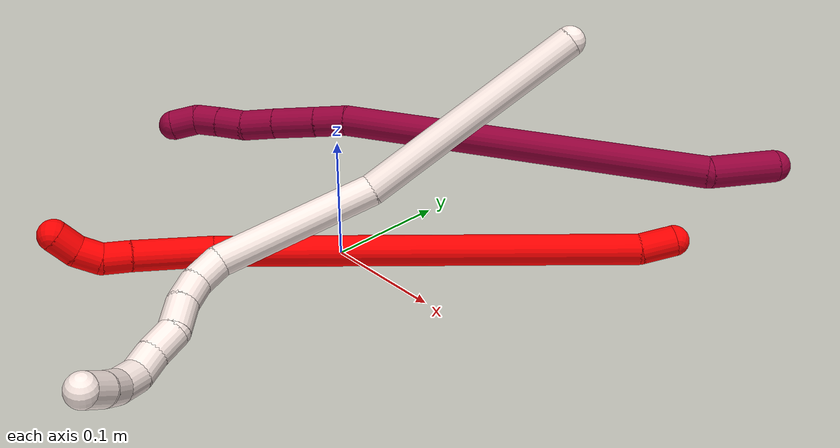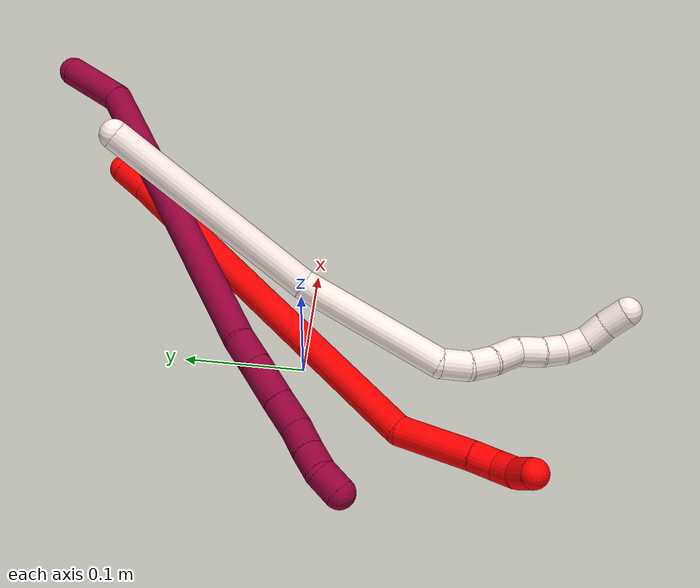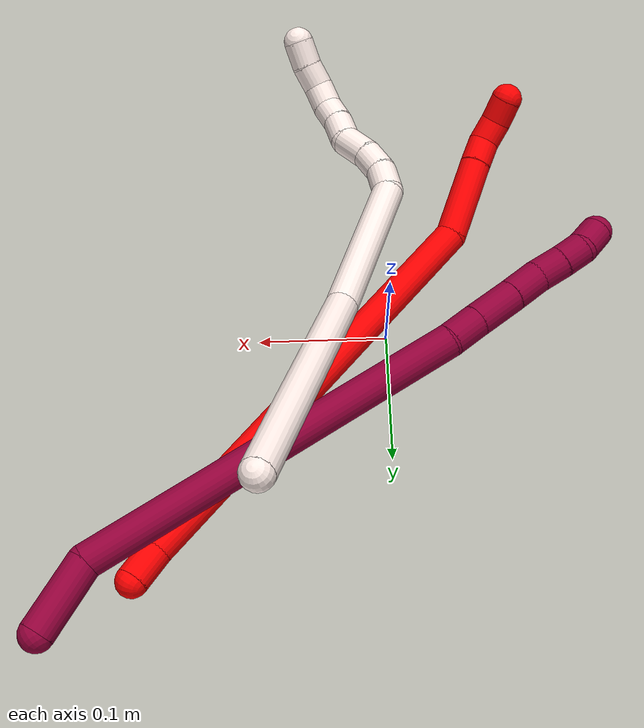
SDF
<sdf version="1.7">
 <world name="default">
  <model name="2">
   <static>0</static>
   <link name="2">
    <collision name="collision-cylinder-e_1_1_4">
     <pose>-0.010624 -0.009458 -0.002747 1.85344 -0.823252 -1.05325</pose>
     <geometry><cylinder><radius>0.0125</radius><length>0.028975</length></cylinder></geometry>
     <surface>
      <friction><ode><mu>1.16</mu><mu2>1.16</mu2><slip1>0</slip1><slip2>0</slip2></ode></friction>
      <contact><ode><kp>1e+06</kp><kd>1</kd><max_vel>0</max_vel><min_depth>0.001</min_depth></ode></contact>
     </surface>
    </collision>
    <visual name="visual-cylinder-e_1_1_4">
     <pose>-0.010624 -0.009458 -0.002747 1.85344 -0.823252 -1.05325</pose>
     <geometry><cylinder><radius>0.0125</radius><length>0.028975</length></cylinder></geometry>
     <material><ambient>1 0 0 1</ambient></material>
    </visual>
    <collision name="collision-cylinder-e_2_4_5">
     <pose>-0.133923 -0.147857 -0.003504 1.55537 -0.718117 -0.708025</pose>
     <geometry><cylinder><radius>0.0125</radius><length>0.342491</length></cylinder></geometry>
     <surface>
      <friction><ode><mu>1.16</mu><mu2>1.16</mu2><slip1>0</slip1><slip2>0</slip2></ode></friction>
      <contact><ode><kp>1e+06</kp><kd>1</kd><max_vel>0</max_vel><min_depth>0.001</min_depth></ode></contact>
     </surface>
    </collision>
    <visual name="visual-cylinder-e_2_4_5">
     <pose>-0.133923 -0.147857 -0.003504 1.55537 -0.718117 -0.708025</pose>
     <geometry><cylinder><radius>0.0125</radius><length>0.342491</length></cylinder></geometry>
     <material><ambient>1 0 0 1</ambient></material>
    </visual>
    <collision name="collision-cylinder-e_3_5_6">
     <pose>-0.259442 -0.305673 -0.009919 1.854 -0.403682 -0.532397</pose>
     <geometry><cylinder><radius>0.0125</radius><length>0.065405</length></cylinder></geometry>
     <surface>
      <friction><ode><mu>1.16</mu><mu2>1.16</mu2><slip1>0</slip1><slip2>0</slip2></ode></friction>
      <contact><ode><kp>1e+06</kp><kd>1</kd><max_vel>0</max_vel><min_depth>0.001</min_depth></ode></contact>
     </surface>
    </collision>
    <visual name="visual-cylinder-e_3_5_6">
     <pose>-0.259442 -0.305673 -0.009919 1.854 -0.403682 -0.532397</pose>
     <geometry><cylinder><radius>0.0125</radius><length>0.065405</length></cylinder></geometry>
     <material><ambient>1 0 0 1</ambient></material>
    </visual>
    <collision name="collision-cylinder-e_4_6_7">
     <pose>-0.277249 -0.343946 -0.021198 1.86776 -0.467464 -0.62274</pose>
     <geometry><cylinder><radius>0.0125</radius><length>0.022016</length></cylinder></geometry>
     <surface>
      <friction><ode><mu>1.16</mu><mu2>1.16</mu2><slip1>0</slip1><slip2>0</slip2></ode></friction>
      <contact><ode><kp>1e+06</kp><kd>1</kd><max_vel>0</max_vel><min_depth>0.001</min_depth></ode></contact>
     </surface>
    </collision>
    <visual name="visual-cylinder-e_4_6_7">
     <pose>-0.277249 -0.343946 -0.021198 1.86776 -0.467464 -0.62274</pose>
     <geometry><cylinder><radius>0.0125</radius><length>0.022016</length></cylinder></geometry>
     <material><ambient>1 0 0 1</ambient></material>
    </visual>
    <collision name="collision-cylinder-e_5_7_8">
     <pose>-0.2847 -0.36303 -0.023319 1.49301 -0.250927 -0.232306</pose>
     <geometry><cylinder><radius>0.0125</radius><length>0.02006</length></cylinder></geometry>
     <surface>
      <friction><ode><mu>1.16</mu><mu2>1.16</mu2><slip1>0</slip1><slip2>0</slip2></ode></friction>
      <contact><ode><kp>1e+06</kp><kd>1</kd><max_vel>0</max_vel><min_depth>0.001</min_depth></ode></contact>
     </surface>
    </collision>
    <visual name="visual-cylinder-e_5_7_8">
     <pose>-0.2847 -0.36303 -0.023319 1.49301 -0.250927 -0.232306</pose>
     <geometry><cylinder><radius>0.0125</radius><length>0.02006</length></cylinder></geometry>
     <material><ambient>1 0 0 1</ambient></material>
    </visual>
    <collision name="collision-cylinder-e_6_8_2">
     <pose>-0.286338 -0.382995 -0.02046 1.36887 0.081089 0.066183</pose>
     <geometry><cylinder><radius>0.0125</radius><length>0.021053</length></cylinder></geometry>
     <surface>
      <friction><ode><mu>1.16</mu><mu2>1.16</mu2><slip1>0</slip1><slip2>0</slip2></ode></friction>
      <contact><ode><kp>1e+06</kp><kd>1</kd><max_vel>0</max_vel><min_depth>0.001</min_depth></ode></contact>
     </surface>
    </collision>
    <visual name="visual-cylinder-e_6_8_2">
     <pose>-0.286338 -0.382995 -0.02046 1.36887 0.081089 0.066183</pose>
     <geometry><cylinder><radius>0.0125</radius><length>0.021053</length></cylinder></geometry>
     <material><ambient>1 0 0 1</ambient></material>
    </visual>
    <collision name="collision-sphere-2">
     <pose>-0.285485 -0.393274 -0.018355 0 -0 0</pose>
     <geometry><sphere><radius>0.0125</radius></sphere></geometry>
     <surface>
      <friction><ode><mu>1.16</mu><mu2>1.16</mu2><slip1>0</slip1><slip2>0</slip2></ode></friction>
      <contact><ode><kp>1e+06</kp><kd>1</kd><max_vel>0</max_vel><min_depth>0.001</min_depth></ode></contact>
     </surface>
    </collision>
    <visual name="visual-sphere-2">
     <pose>-0.285485 -0.393274 -0.018355 0 -0 0</pose>
     <geometry><sphere><radius>0.0125</radius></sphere></geometry>
     <material><ambient>1 0 0 1</ambient></material>
    </visual>
    <collision name="collision-sphere-4">
     <pose>-0.021249 -0.018917 -0.005494 0 -0 0</pose>
     <geometry><sphere><radius>0.0125</radius></sphere></geometry>
     <surface>
      <friction><ode><mu>1.16</mu><mu2>1.16</mu2><slip1>0</slip1><slip2>0</slip2></ode></friction>
      <contact><ode><kp>1e+06</kp><kd>1</kd><max_vel>0</max_vel><min_depth>0.001</min_depth></ode></contact>
     </surface>
    </collision>
    <visual name="visual-sphere-4">
     <pose>-0.021249 -0.018917 -0.005494 0 -0 0</pose>
     <geometry><sphere><radius>0.0125</radius></sphere></geometry>
     <material><ambient>1 0 0 1</ambient></material>
    </visual>
    <collision name="collision-sphere-1">
     <geometry><sphere><radius>0.0125</radius></sphere></geometry>
     <surface>
      <friction><ode><mu>1.16</mu><mu2>1.16</mu2><slip1>0</slip1><slip2>0</slip2></ode></friction>
      <contact><ode><kp>1e+06</kp><kd>1</kd><max_vel>0</max_vel><min_depth>0.001</min_depth></ode></contact>
     </surface>
    </collision>
    <visual name="visual-sphere-1">
     <geometry><sphere><radius>0.0125</radius></sphere></geometry>
     <material><ambient>1 0 0 1</ambient></material>
    </visual>
    <collision name="collision-sphere-8">
     <pose>-0.28719 -0.372716 -0.022564 0 -0 0</pose>
     <geometry><sphere><radius>0.0125</radius></sphere></geometry>
     <surface>
      <friction><ode><mu>1.16</mu><mu2>1.16</mu2><slip1>0</slip1><slip2>0</slip2></ode></friction>
      <contact><ode><kp>1e+06</kp><kd>1</kd><max_vel>0</max_vel><min_depth>0.001</min_depth></ode></contact>
     </surface>
    </collision>
    <visual name="visual-sphere-8">
     <pose>-0.28719 -0.372716 -0.022564 0 -0 0</pose>
     <geometry><sphere><radius>0.0125</radius></sphere></geometry>
     <material><ambient>1 0 0 1</ambient></material>
    </visual>
    <collision name="collision-sphere-5">
     <pose>-0.246597 -0.276797 -0.001515 0 -0 0</pose>
     <geometry><sphere><radius>0.0125</radius></sphere></geometry>
     <surface>
      <friction><ode><mu>1.16</mu><mu2>1.16</mu2><slip1>0</slip1><slip2>0</slip2></ode></friction>
      <contact><ode><kp>1e+06</kp><kd>1</kd><max_vel>0</max_vel><min_depth>0.001</min_depth></ode></contact>
     </surface>
    </collision>
    <visual name="visual-sphere-5">
     <pose>-0.246597 -0.276797 -0.001515 0 -0 0</pose>
     <geometry><sphere><radius>0.0125</radius></sphere></geometry>
     <material><ambient>1 0 0 1</ambient></material>
    </visual>
    <collision name="collision-sphere-6">
     <pose>-0.272288 -0.334549 -0.018323 0 -0 0</pose>
     <geometry><sphere><radius>0.0125</radius></sphere></geometry>
     <surface>
      <friction><ode><mu>1.16</mu><mu2>1.16</mu2><slip1>0</slip1><slip2>0</slip2></ode></friction>
      <contact><ode><kp>1e+06</kp><kd>1</kd><max_vel>0</max_vel><min_depth>0.001</min_depth></ode></contact>
     </surface>
    </collision>
    <visual name="visual-sphere-6">
     <pose>-0.272288 -0.334549 -0.018323 0 -0 0</pose>
     <geometry><sphere><radius>0.0125</radius></sphere></geometry>
     <material><ambient>1 0 0 1</ambient></material>
    </visual>
    <collision name="collision-sphere-7">
     <pose>-0.282209 -0.353343 -0.024074 0 -0 0</pose>
     <geometry><sphere><radius>0.0125</radius></sphere></geometry>
     <surface>
      <friction><ode><mu>1.16</mu><mu2>1.16</mu2><slip1>0</slip1><slip2>0</slip2></ode></friction>
      <contact><ode><kp>1e+06</kp><kd>1</kd><max_vel>0</max_vel><min_depth>0.001</min_depth></ode></contact>
     </surface>
    </collision>
    <visual name="visual-sphere-7">
     <pose>-0.282209 -0.353343 -0.024074 0 -0 0</pose>
     <geometry><sphere><radius>0.0125</radius></sphere></geometry>
     <material><ambient>1 0 0 1</ambient></material>
    </visual>
    <inertial>
     <pose>-0.161975 -0.187649 -0.006588 0 -0 0</pose>
     <mass>0.5</mass>
     <inertia>
      <ixx>0.000265</ixx>
      <ixy>0</ixy>
      <ixz>0</ixz>
      <iyy>-0.000214</iyy>
      <iyz>0</iyz>
      <izz>0.004784</izz>
     </inertia>
    </inertial>
   </link>
   <pose>0.191408 0.189734 0.016993 -1.0119 -0.775123 0.424746</pose>
  </model>
  <model name="8">
   <static>0</static>
   <link name="8">
    <collision name="collision-cylinder-e_1_1_4">
     <pose>-0.018706 -0.014582 0.013111 0.838463 -0.761815 -0.353217</pose>
     <geometry><cylinder><radius>0.0125</radius><length>0.054202</length></cylinder></geometry>
     <surface>
      <friction><ode><mu>1.16</mu><mu2>1.16</mu2><slip1>0</slip1><slip2>0</slip2></ode></friction>
      <contact><ode><kp>1e+06</kp><kd>1</kd><max_vel>0</max_vel><min_depth>0.001</min_depth></ode></contact>
     </surface>
    </collision>
    <visual name="visual-cylinder-e_1_1_4">
     <pose>-0.018706 -0.014582 0.013111 0.838463 -0.761815 -0.353217</pose>
     <geometry><cylinder><radius>0.0125</radius><length>0.054202</length></cylinder></geometry>
     <material><ambient>0.584314 0 0.227451 1</ambient></material>
    </visual>
    <collision name="collision-cylinder-e_2_4_5">
     <pose>-0.153394 -0.118827 0.030024 1.52842 -0.912255 -0.879171</pose>
     <geometry><cylinder><radius>0.0125</radius><length>0.293295</length></cylinder></geometry>
     <surface>
      <friction><ode><mu>1.16</mu><mu2>1.16</mu2><slip1>0</slip1><slip2>0</slip2></ode></friction>
      <contact><ode><kp>1e+06</kp><kd>1</kd><max_vel>0</max_vel><min_depth>0.001</min_depth></ode></contact>
     </surface>
    </collision>
    <visual name="visual-cylinder-e_2_4_5">
     <pose>-0.153394 -0.118827 0.030024 1.52842 -0.912255 -0.879171</pose>
     <geometry><cylinder><radius>0.0125</radius><length>0.293295</length></cylinder></geometry>
     <material><ambient>0.584314 0 0.227451 1</ambient></material>
    </visual>
    <collision name="collision-cylinder-e_3_5_6">
     <pose>-0.278341 -0.217581 0.035871 1.3495 -0.76611 -0.623706</pose>
     <geometry><cylinder><radius>0.0125</radius><length>0.025863</length></cylinder></geometry>
     <surface>
      <friction><ode><mu>1.16</mu><mu2>1.16</mu2><slip1>0</slip1><slip2>0</slip2></ode></friction>
      <contact><ode><kp>1e+06</kp><kd>1</kd><max_vel>0</max_vel><min_depth>0.001</min_depth></ode></contact>
     </surface>
    </collision>
    <visual name="visual-cylinder-e_3_5_6">
     <pose>-0.278341 -0.217581 0.035871 1.3495 -0.76611 -0.623706</pose>
     <geometry><cylinder><radius>0.0125</radius><length>0.025863</length></cylinder></geometry>
     <material><ambient>0.584314 0 0.227451 1</ambient></material>
    </visual>
    <collision name="collision-cylinder-e_4_6_7">
     <pose>-0.299639 -0.239271 0.040442 1.37293 -0.764841 -0.636747</pose>
     <geometry><cylinder><radius>0.0125</radius><length>0.035618</length></cylinder></geometry>
     <surface>
      <friction><ode><mu>1.16</mu><mu2>1.16</mu2><slip1>0</slip1><slip2>0</slip2></ode></friction>
      <contact><ode><kp>1e+06</kp><kd>1</kd><max_vel>0</max_vel><min_depth>0.001</min_depth></ode></contact>
     </surface>
    </collision>
    <visual name="visual-cylinder-e_4_6_7">
     <pose>-0.299639 -0.239271 0.040442 1.37293 -0.764841 -0.636747</pose>
     <geometry><cylinder><radius>0.0125</radius><length>0.035618</length></cylinder></geometry>
     <material><ambient>0.584314 0 0.227451 1</ambient></material>
    </visual>
    <collision name="collision-cylinder-e_5_7_8">
     <pose>-0.321256 -0.261599 0.045255 1.33997 -0.748659 -0.603455</pose>
     <geometry><cylinder><radius>0.0125</radius><length>0.027285</length></cylinder></geometry>
     <surface>
      <friction><ode><mu>1.16</mu><mu2>1.16</mu2><slip1>0</slip1><slip2>0</slip2></ode></friction>
      <contact><ode><kp>1e+06</kp><kd>1</kd><max_vel>0</max_vel><min_depth>0.001</min_depth></ode></contact>
     </surface>
    </collision>
    <visual name="visual-cylinder-e_5_7_8">
     <pose>-0.321256 -0.261599 0.045255 1.33997 -0.748659 -0.603455</pose>
     <geometry><cylinder><radius>0.0125</radius><length>0.027285</length></cylinder></geometry>
     <material><ambient>0.584314 0 0.227451 1</ambient></material>
    </visual>
    <collision name="collision-cylinder-e_6_8_9">
     <pose>-0.3394 -0.278214 0.047852 1.52566 -0.909483 -0.874345</pose>
     <geometry><cylinder><radius>0.0125</radius><length>0.022447</length></cylinder></geometry>
     <surface>
      <friction><ode><mu>1.16</mu><mu2>1.16</mu2><slip1>0</slip1><slip2>0</slip2></ode></friction>
      <contact><ode><kp>1e+06</kp><kd>1</kd><max_vel>0</max_vel><min_depth>0.001</min_depth></ode></contact>
     </surface>
    </collision>
    <visual name="visual-cylinder-e_6_8_9">
     <pose>-0.3394 -0.278214 0.047852 1.52566 -0.909483 -0.874345</pose>
     <geometry><cylinder><radius>0.0125</radius><length>0.022447</length></cylinder></geometry>
     <material><ambient>0.584314 0 0.227451 1</ambient></material>
    </visual>
    <collision name="collision-cylinder-e_7_9_10">
     <pose>-0.356184 -0.291309 0.048966 1.44229 -0.902324 -0.805289</pose>
     <geometry><cylinder><radius>0.0125</radius><length>0.020201</length></cylinder></geometry>
     <surface>
      <friction><ode><mu>1.16</mu><mu2>1.16</mu2><slip1>0</slip1><slip2>0</slip2></ode></friction>
      <contact><ode><kp>1e+06</kp><kd>1</kd><max_vel>0</max_vel><min_depth>0.001</min_depth></ode></contact>
     </surface>
    </collision>
    <visual name="visual-cylinder-e_7_9_10">
     <pose>-0.356184 -0.291309 0.048966 1.44229 -0.902324 -0.805289</pose>
     <geometry><cylinder><radius>0.0125</radius><length>0.020201</length></cylinder></geometry>
     <material><ambient>0.584314 0 0.227451 1</ambient></material>
    </visual>
    <collision name="collision-cylinder-e_8_10_2">
     <pose>-0.370161 -0.305306 0.053495 1.12443 -0.611276 -0.392468</pose>
     <geometry><cylinder><radius>0.0125</radius><length>0.021088</length></cylinder></geometry>
     <surface>
      <friction><ode><mu>1.16</mu><mu2>1.16</mu2><slip1>0</slip1><slip2>0</slip2></ode></friction>
      <contact><ode><kp>1e+06</kp><kd>1</kd><max_vel>0</max_vel><min_depth>0.001</min_depth></ode></contact>
     </surface>
    </collision>
    <visual name="visual-cylinder-e_8_10_2">
     <pose>-0.370161 -0.305306 0.053495 1.12443 -0.611276 -0.392468</pose>
     <geometry><cylinder><radius>0.0125</radius><length>0.021088</length></cylinder></geometry>
     <material><ambient>0.584314 0 0.227451 1</ambient></material>
    </visual>
    <collision name="collision-sphere-2">
     <pose>-0.376213 -0.313094 0.057223 0 -0 0</pose>
     <geometry><sphere><radius>0.0125</radius></sphere></geometry>
     <surface>
      <friction><ode><mu>1.16</mu><mu2>1.16</mu2><slip1>0</slip1><slip2>0</slip2></ode></friction>
      <contact><ode><kp>1e+06</kp><kd>1</kd><max_vel>0</max_vel><min_depth>0.001</min_depth></ode></contact>
     </surface>
    </collision>
    <visual name="visual-sphere-2">
     <pose>-0.376213 -0.313094 0.057223 0 -0 0</pose>
     <geometry><sphere><radius>0.0125</radius></sphere></geometry>
     <material><ambient>0.584314 0 0.227451 1</ambient></material>
    </visual>
    <collision name="collision-sphere-10">
     <pose>-0.36411 -0.297517 0.049768 0 -0 0</pose>
     <geometry><sphere><radius>0.0125</radius></sphere></geometry>
     <surface>
      <friction><ode><mu>1.16</mu><mu2>1.16</mu2><slip1>0</slip1><slip2>0</slip2></ode></friction>
      <contact><ode><kp>1e+06</kp><kd>1</kd><max_vel>0</max_vel><min_depth>0.001</min_depth></ode></contact>
     </surface>
    </collision>
    <visual name="visual-sphere-10">
     <pose>-0.36411 -0.297517 0.049768 0 -0 0</pose>
     <geometry><sphere><radius>0.0125</radius></sphere></geometry>
     <material><ambient>0.584314 0 0.227451 1</ambient></material>
    </visual>
    <collision name="collision-sphere-9">
     <pose>-0.348257 -0.2851 0.048163 0 -0 0</pose>
     <geometry><sphere><radius>0.0125</radius></sphere></geometry>
     <surface>
      <friction><ode><mu>1.16</mu><mu2>1.16</mu2><slip1>0</slip1><slip2>0</slip2></ode></friction>
      <contact><ode><kp>1e+06</kp><kd>1</kd><max_vel>0</max_vel><min_depth>0.001</min_depth></ode></contact>
     </surface>
    </collision>
    <visual name="visual-sphere-9">
     <pose>-0.348257 -0.2851 0.048163 0 -0 0</pose>
     <geometry><sphere><radius>0.0125</radius></sphere></geometry>
     <material><ambient>0.584314 0 0.227451 1</ambient></material>
    </visual>
    <collision name="collision-sphere-4">
     <pose>-0.037412 -0.029164 0.026223 0 -0 0</pose>
     <geometry><sphere><radius>0.0125</radius></sphere></geometry>
     <surface>
      <friction><ode><mu>1.16</mu><mu2>1.16</mu2><slip1>0</slip1><slip2>0</slip2></ode></friction>
      <contact><ode><kp>1e+06</kp><kd>1</kd><max_vel>0</max_vel><min_depth>0.001</min_depth></ode></contact>
     </surface>
    </collision>
    <visual name="visual-sphere-4">
     <pose>-0.037412 -0.029164 0.026223 0 -0 0</pose>
     <geometry><sphere><radius>0.0125</radius></sphere></geometry>
     <material><ambient>0.584314 0 0.227451 1</ambient></material>
    </visual>
    <collision name="collision-sphere-1">
     <geometry><sphere><radius>0.0125</radius></sphere></geometry>
     <surface>
      <friction><ode><mu>1.16</mu><mu2>1.16</mu2><slip1>0</slip1><slip2>0</slip2></ode></friction>
      <contact><ode><kp>1e+06</kp><kd>1</kd><max_vel>0</max_vel><min_depth>0.001</min_depth></ode></contact>
     </surface>
    </collision>
    <visual name="visual-sphere-1">
     <geometry><sphere><radius>0.0125</radius></sphere></geometry>
     <material><ambient>0.584314 0 0.227451 1</ambient></material>
    </visual>
    <collision name="collision-sphere-8">
     <pose>-0.330542 -0.271328 0.047541 0 -0 0</pose>
     <geometry><sphere><radius>0.0125</radius></sphere></geometry>
     <surface>
      <friction><ode><mu>1.16</mu><mu2>1.16</mu2><slip1>0</slip1><slip2>0</slip2></ode></friction>
      <contact><ode><kp>1e+06</kp><kd>1</kd><max_vel>0</max_vel><min_depth>0.001</min_depth></ode></contact>
     </surface>
    </collision>
    <visual name="visual-sphere-8">
     <pose>-0.330542 -0.271328 0.047541 0 -0 0</pose>
     <geometry><sphere><radius>0.0125</radius></sphere></geometry>
     <material><ambient>0.584314 0 0.227451 1</ambient></material>
    </visual>
    <collision name="collision-sphere-5">
     <pose>-0.269375 -0.208489 0.033826 0 -0 0</pose>
     <geometry><sphere><radius>0.0125</radius></sphere></geometry>
     <surface>
      <friction><ode><mu>1.16</mu><mu2>1.16</mu2><slip1>0</slip1><slip2>0</slip2></ode></friction>
      <contact><ode><kp>1e+06</kp><kd>1</kd><max_vel>0</max_vel><min_depth>0.001</min_depth></ode></contact>
     </surface>
    </collision>
    <visual name="visual-sphere-5">
     <pose>-0.269375 -0.208489 0.033826 0 -0 0</pose>
     <geometry><sphere><radius>0.0125</radius></sphere></geometry>
     <material><ambient>0.584314 0 0.227451 1</ambient></material>
    </visual>
    <collision name="collision-sphere-6">
     <pose>-0.287307 -0.226672 0.037916 0 -0 0</pose>
     <geometry><sphere><radius>0.0125</radius></sphere></geometry>
     <surface>
      <friction><ode><mu>1.16</mu><mu2>1.16</mu2><slip1>0</slip1><slip2>0</slip2></ode></friction>
      <contact><ode><kp>1e+06</kp><kd>1</kd><max_vel>0</max_vel><min_depth>0.001</min_depth></ode></contact>
     </surface>
    </collision>
    <visual name="visual-sphere-6">
     <pose>-0.287307 -0.226672 0.037916 0 -0 0</pose>
     <geometry><sphere><radius>0.0125</radius></sphere></geometry>
     <material><ambient>0.584314 0 0.227451 1</ambient></material>
    </visual>
    <collision name="collision-sphere-7">
     <pose>-0.31197 -0.251869 0.042968 0 -0 0</pose>
     <geometry><sphere><radius>0.0125</radius></sphere></geometry>
     <surface>
      <friction><ode><mu>1.16</mu><mu2>1.16</mu2><slip1>0</slip1><slip2>0</slip2></ode></friction>
      <contact><ode><kp>1e+06</kp><kd>1</kd><max_vel>0</max_vel><min_depth>0.001</min_depth></ode></contact>
     </surface>
    </collision>
    <visual name="visual-sphere-7">
     <pose>-0.31197 -0.251869 0.042968 0 -0 0</pose>
     <geometry><sphere><radius>0.0125</radius></sphere></geometry>
     <material><ambient>0.584314 0 0.227451 1</ambient></material>
    </visual>
    <inertial>
     <pose>-0.19052 -0.150995 0.032622 0 -0 0</pose>
     <mass>0.5</mass>
     <inertia>
      <ixx>-0.000192</ixx>
      <ixy>0</ixy>
      <ixz>0</ixz>
      <iyy>0.000334</iyy>
      <iyz>0</iyz>
      <izz>0.003009</izz>
     </inertia>
    </inertial>
   </link>
   <pose>0.240792 0.238372 0.086478 1.59371 0.674669 0.521422</pose>
  </model>
  <model name="11">
   <static>0</static>
   <link name="11">
    <collision name="collision-cylinder-e_1_1_4">
     <pose>0.010299 -0.082052 -0.050257 2.12036 0.106629 0.189958</pose>
     <geometry><cylinder><radius>0.0125</radius><length>0.19354</length></cylinder></geometry>
     <surface>
      <friction><ode><mu>1.16</mu><mu2>1.16</mu2><slip1>0</slip1><slip2>0</slip2></ode></friction>
      <contact><ode><kp>1e+06</kp><kd>1</kd><max_vel>0</max_vel><min_depth>0.001</min_depth></ode></contact>
     </surface>
    </collision>
    <visual name="visual-cylinder-e_1_1_4">
     <pose>0.010299 -0.082052 -0.050257 2.12036 0.106629 0.189958</pose>
     <geometry><cylinder><radius>0.0125</radius><length>0.19354</length></cylinder></geometry>
     <material><ambient>1 0.933333 0.909804 1</ambient></material>
    </visual>
    <collision name="collision-cylinder-e_2_4_5">
     <pose>0.024865 -0.225137 -0.11932 1.8697 0.066711 0.090335</pose>
     <geometry><cylinder><radius>0.0125</radius><length>0.128013</length></cylinder></geometry>
     <surface>
      <friction><ode><mu>1.16</mu><mu2>1.16</mu2><slip1>0</slip1><slip2>0</slip2></ode></friction>
      <contact><ode><kp>1e+06</kp><kd>1</kd><max_vel>0</max_vel><min_depth>0.001</min_depth></ode></contact>
     </surface>
    </collision>
    <visual name="visual-cylinder-e_2_4_5">
     <pose>0.024865 -0.225137 -0.11932 1.8697 0.066711 0.090335</pose>
     <geometry><cylinder><radius>0.0125</radius><length>0.128013</length></cylinder></geometry>
     <material><ambient>1 0.933333 0.909804 1</ambient></material>
    </visual>
    <collision name="collision-cylinder-e_3_5_6">
     <pose>0.035733 -0.296411 -0.140237 1.77404 0.563186 0.6822</pose>
     <geometry><cylinder><radius>0.0125</radius><length>0.024732</length></cylinder></geometry>
     <surface>
      <friction><ode><mu>1.16</mu><mu2>1.16</mu2><slip1>0</slip1><slip2>0</slip2></ode></friction>
      <contact><ode><kp>1e+06</kp><kd>1</kd><max_vel>0</max_vel><min_depth>0.001</min_depth></ode></contact>
     </surface>
    </collision>
    <visual name="visual-cylinder-e_3_5_6">
     <pose>0.035733 -0.296411 -0.140237 1.77404 0.563186 0.6822</pose>
     <geometry><cylinder><radius>0.0125</radius><length>0.024732</length></cylinder></geometry>
     <material><ambient>1 0.933333 0.909804 1</ambient></material>
    </visual>
    <collision name="collision-cylinder-e_4_6_7">
     <pose>0.050932 -0.313658 -0.143154 1.68544 0.883737 0.975756</pose>
     <geometry><cylinder><radius>0.0125</radius><length>0.022238</length></cylinder></geometry>
     <surface>
      <friction><ode><mu>1.16</mu><mu2>1.16</mu2><slip1>0</slip1><slip2>0</slip2></ode></friction>
      <contact><ode><kp>1e+06</kp><kd>1</kd><max_vel>0</max_vel><min_depth>0.001</min_depth></ode></contact>
     </surface>
    </collision>
    <visual name="visual-cylinder-e_4_6_7">
     <pose>0.050932 -0.313658 -0.143154 1.68544 0.883737 0.975756</pose>
     <geometry><cylinder><radius>0.0125</radius><length>0.022238</length></cylinder></geometry>
     <material><ambient>1 0.933333 0.909804 1</ambient></material>
    </visual>
    <collision name="collision-cylinder-e_5_7_8">
     <pose>0.071176 -0.326455 -0.145143 1.77203 1.10119 1.28931</pose>
     <geometry><cylinder><radius>0.0125</radius><length>0.026124</length></cylinder></geometry>
     <surface>
      <friction><ode><mu>1.16</mu><mu2>1.16</mu2><slip1>0</slip1><slip2>0</slip2></ode></friction>
      <contact><ode><kp>1e+06</kp><kd>1</kd><max_vel>0</max_vel><min_depth>0.001</min_depth></ode></contact>
     </surface>
    </collision>
    <visual name="visual-cylinder-e_5_7_8">
     <pose>0.071176 -0.326455 -0.145143 1.77203 1.10119 1.28931</pose>
     <geometry><cylinder><radius>0.0125</radius><length>0.026124</length></cylinder></geometry>
     <material><ambient>1 0.933333 0.909804 1</ambient></material>
    </visual>
    <collision name="collision-cylinder-e_6_8_9">
     <pose>0.089624 -0.341331 -0.147956 1.74857 0.635009 0.748789</pose>
     <geometry><cylinder><radius>0.0125</radius><length>0.022929</length></cylinder></geometry>
     <surface>
      <friction><ode><mu>1.16</mu><mu2>1.16</mu2><slip1>0</slip1><slip2>0</slip2></ode></friction>
      <contact><ode><kp>1e+06</kp><kd>1</kd><max_vel>0</max_vel><min_depth>0.001</min_depth></ode></contact>
     </surface>
    </collision>
    <visual name="visual-cylinder-e_6_8_9">
     <pose>0.089624 -0.341331 -0.147956 1.74857 0.635009 0.748789</pose>
     <geometry><cylinder><radius>0.0125</radius><length>0.022929</length></cylinder></geometry>
     <material><ambient>1 0.933333 0.909804 1</ambient></material>
    </visual>
    <collision name="collision-cylinder-e_7_9_10">
     <pose>0.103655 -0.357413 -0.150524 1.70377 0.797367 0.897217</pose>
     <geometry><cylinder><radius>0.0125</radius><length>0.02021</length></cylinder></geometry>
     <surface>
      <friction><ode><mu>1.16</mu><mu2>1.16</mu2><slip1>0</slip1><slip2>0</slip2></ode></friction>
      <contact><ode><kp>1e+06</kp><kd>1</kd><max_vel>0</max_vel><min_depth>0.001</min_depth></ode></contact>
     </surface>
    </collision>
    <visual name="visual-cylinder-e_7_9_10">
     <pose>0.103655 -0.357413 -0.150524 1.70377 0.797367 0.897217</pose>
     <geometry><cylinder><radius>0.0125</radius><length>0.02021</length></cylinder></geometry>
     <material><ambient>1 0.933333 0.909804 1</ambient></material>
    </visual>
    <collision name="collision-cylinder-e_8_10_11">
     <pose>0.117065 -0.371881 -0.148081 1.14602 0.645756 0.425241</pose>
     <geometry><cylinder><radius>0.0125</radius><length>0.020537</length></cylinder></geometry>
     <surface>
      <friction><ode><mu>1.16</mu><mu2>1.16</mu2><slip1>0</slip1><slip2>0</slip2></ode></friction>
      <contact><ode><kp>1e+06</kp><kd>1</kd><max_vel>0</max_vel><min_depth>0.001</min_depth></ode></contact>
     </surface>
    </collision>
    <visual name="visual-cylinder-e_8_10_11">
     <pose>0.117065 -0.371881 -0.148081 1.14602 0.645756 0.425241</pose>
     <geometry><cylinder><radius>0.0125</radius><length>0.020537</length></cylinder></geometry>
     <material><ambient>1 0.933333 0.909804 1</ambient></material>
    </visual>
    <collision name="collision-cylinder-e_9_11_12">
     <pose>0.128812 -0.384634 -0.138075 0.672888 0.581392 0.208506</pose>
     <geometry><cylinder><radius>0.0125</radius><length>0.020276</length></cylinder></geometry>
     <surface>
      <friction><ode><mu>1.16</mu><mu2>1.16</mu2><slip1>0</slip1><slip2>0</slip2></ode></friction>
      <contact><ode><kp>1e+06</kp><kd>1</kd><max_vel>0</max_vel><min_depth>0.001</min_depth></ode></contact>
     </surface>
    </collision>
    <visual name="visual-cylinder-e_9_11_12">
     <pose>0.128812 -0.384634 -0.138075 0.672888 0.581392 0.208506</pose>
     <geometry><cylinder><radius>0.0125</radius><length>0.020276</length></cylinder></geometry>
     <material><ambient>1 0.933333 0.909804 1</ambient></material>
    </visual>
    <collision name="collision-cylinder-e_10_12_2">
     <pose>0.138952 -0.396561 -0.124419 0.757341 0.441516 0.178105</pose>
     <geometry><cylinder><radius>0.0125</radius><length>0.021401</length></cylinder></geometry>
     <surface>
      <friction><ode><mu>1.16</mu><mu2>1.16</mu2><slip1>0</slip1><slip2>0</slip2></ode></friction>
      <contact><ode><kp>1e+06</kp><kd>1</kd><max_vel>0</max_vel><min_depth>0.001</min_depth></ode></contact>
     </surface>
    </collision>
    <visual name="visual-cylinder-e_10_12_2">
     <pose>0.138952 -0.396561 -0.124419 0.757341 0.441516 0.178105</pose>
     <geometry><cylinder><radius>0.0125</radius><length>0.021401</length></cylinder></geometry>
     <material><ambient>1 0.933333 0.909804 1</ambient></material>
    </visual>
    <collision name="collision-sphere-2">
     <pose>0.143525 -0.403207 -0.117389 0 -0 0</pose>
     <geometry><sphere><radius>0.0125</radius></sphere></geometry>
     <surface>
      <friction><ode><mu>1.16</mu><mu2>1.16</mu2><slip1>0</slip1><slip2>0</slip2></ode></friction>
      <contact><ode><kp>1e+06</kp><kd>1</kd><max_vel>0</max_vel><min_depth>0.001</min_depth></ode></contact>
     </surface>
    </collision>
    <visual name="visual-sphere-2">
     <pose>0.143525 -0.403207 -0.117389 0 -0 0</pose>
     <geometry><sphere><radius>0.0125</radius></sphere></geometry>
     <material><ambient>1 0.933333 0.909804 1</ambient></material>
    </visual>
    <collision name="collision-sphere-12">
     <pose>0.13438 -0.389914 -0.13145 0 -0 0</pose>
     <geometry><sphere><radius>0.0125</radius></sphere></geometry>
     <surface>
      <friction><ode><mu>1.16</mu><mu2>1.16</mu2><slip1>0</slip1><slip2>0</slip2></ode></friction>
      <contact><ode><kp>1e+06</kp><kd>1</kd><max_vel>0</max_vel><min_depth>0.001</min_depth></ode></contact>
     </surface>
    </collision>
    <visual name="visual-sphere-12">
     <pose>0.13438 -0.389914 -0.13145 0 -0 0</pose>
     <geometry><sphere><radius>0.0125</radius></sphere></geometry>
     <material><ambient>1 0.933333 0.909804 1</ambient></material>
    </visual>
    <collision name="collision-sphere-11">
     <pose>0.123244 -0.379353 -0.144701 0 -0 0</pose>
     <geometry><sphere><radius>0.0125</radius></sphere></geometry>
     <surface>
      <friction><ode><mu>1.16</mu><mu2>1.16</mu2><slip1>0</slip1><slip2>0</slip2></ode></friction>
      <contact><ode><kp>1e+06</kp><kd>1</kd><max_vel>0</max_vel><min_depth>0.001</min_depth></ode></contact>
     </surface>
    </collision>
    <visual name="visual-sphere-11">
     <pose>0.123244 -0.379353 -0.144701 0 -0 0</pose>
     <geometry><sphere><radius>0.0125</radius></sphere></geometry>
     <material><ambient>1 0.933333 0.909804 1</ambient></material>
    </visual>
    <collision name="collision-sphere-10">
     <pose>0.110885 -0.364409 -0.15146 0 -0 0</pose>
     <geometry><sphere><radius>0.0125</radius></sphere></geometry>
     <surface>
      <friction><ode><mu>1.16</mu><mu2>1.16</mu2><slip1>0</slip1><slip2>0</slip2></ode></friction>
      <contact><ode><kp>1e+06</kp><kd>1</kd><max_vel>0</max_vel><min_depth>0.001</min_depth></ode></contact>
     </surface>
    </collision>
    <visual name="visual-sphere-10">
     <pose>0.110885 -0.364409 -0.15146 0 -0 0</pose>
     <geometry><sphere><radius>0.0125</radius></sphere></geometry>
     <material><ambient>1 0.933333 0.909804 1</ambient></material>
    </visual>
    <collision name="collision-sphere-9">
     <pose>0.096425 -0.350416 -0.149588 0 -0 0</pose>
     <geometry><sphere><radius>0.0125</radius></sphere></geometry>
     <surface>
      <friction><ode><mu>1.16</mu><mu2>1.16</mu2><slip1>0</slip1><slip2>0</slip2></ode></friction>
      <contact><ode><kp>1e+06</kp><kd>1</kd><max_vel>0</max_vel><min_depth>0.001</min_depth></ode></contact>
     </surface>
    </collision>
    <visual name="visual-sphere-9">
     <pose>0.096425 -0.350416 -0.149588 0 -0 0</pose>
     <geometry><sphere><radius>0.0125</radius></sphere></geometry>
     <material><ambient>1 0.933333 0.909804 1</ambient></material>
    </visual>
    <collision name="collision-sphere-4">
     <pose>0.020598 -0.164105 -0.100514 0 -0 0</pose>
     <geometry><sphere><radius>0.0125</radius></sphere></geometry>
     <surface>
      <friction><ode><mu>1.16</mu><mu2>1.16</mu2><slip1>0</slip1><slip2>0</slip2></ode></friction>
      <contact><ode><kp>1e+06</kp><kd>1</kd><max_vel>0</max_vel><min_depth>0.001</min_depth></ode></contact>
     </surface>
    </collision>
    <visual name="visual-sphere-4">
     <pose>0.020598 -0.164105 -0.100514 0 -0 0</pose>
     <geometry><sphere><radius>0.0125</radius></sphere></geometry>
     <material><ambient>1 0.933333 0.909804 1</ambient></material>
    </visual>
    <collision name="collision-sphere-1">
     <geometry><sphere><radius>0.0125</radius></sphere></geometry>
     <surface>
      <friction><ode><mu>1.16</mu><mu2>1.16</mu2><slip1>0</slip1><slip2>0</slip2></ode></friction>
      <contact><ode><kp>1e+06</kp><kd>1</kd><max_vel>0</max_vel><min_depth>0.001</min_depth></ode></contact>
     </surface>
    </collision>
    <visual name="visual-sphere-1">
     <geometry><sphere><radius>0.0125</radius></sphere></geometry>
     <material><ambient>1 0.933333 0.909804 1</ambient></material>
    </visual>
    <collision name="collision-sphere-8">
     <pose>0.082823 -0.332247 -0.146324 0 -0 0</pose>
     <geometry><sphere><radius>0.0125</radius></sphere></geometry>
     <surface>
      <friction><ode><mu>1.16</mu><mu2>1.16</mu2><slip1>0</slip1><slip2>0</slip2></ode></friction>
      <contact><ode><kp>1e+06</kp><kd>1</kd><max_vel>0</max_vel><min_depth>0.001</min_depth></ode></contact>
     </surface>
    </collision>
    <visual name="visual-sphere-8">
     <pose>0.082823 -0.332247 -0.146324 0 -0 0</pose>
     <geometry><sphere><radius>0.0125</radius></sphere></geometry>
     <material><ambient>1 0.933333 0.909804 1</ambient></material>
    </visual>
    <collision name="collision-sphere-5">
     <pose>0.029132 -0.28617 -0.138127 0 -0 0</pose>
     <geometry><sphere><radius>0.0125</radius></sphere></geometry>
     <surface>
      <friction><ode><mu>1.16</mu><mu2>1.16</mu2><slip1>0</slip1><slip2>0</slip2></ode></friction>
      <contact><ode><kp>1e+06</kp><kd>1</kd><max_vel>0</max_vel><min_depth>0.001</min_depth></ode></contact>
     </surface>
    </collision>
    <visual name="visual-sphere-5">
     <pose>0.029132 -0.28617 -0.138127 0 -0 0</pose>
     <geometry><sphere><radius>0.0125</radius></sphere></geometry>
     <material><ambient>1 0.933333 0.909804 1</ambient></material>
    </visual>
    <collision name="collision-sphere-6">
     <pose>0.042335 -0.306652 -0.142348 0 -0 0</pose>
     <geometry><sphere><radius>0.0125</radius></sphere></geometry>
     <surface>
      <friction><ode><mu>1.16</mu><mu2>1.16</mu2><slip1>0</slip1><slip2>0</slip2></ode></friction>
      <contact><ode><kp>1e+06</kp><kd>1</kd><max_vel>0</max_vel><min_depth>0.001</min_depth></ode></contact>
     </surface>
    </collision>
    <visual name="visual-sphere-6">
     <pose>0.042335 -0.306652 -0.142348 0 -0 0</pose>
     <geometry><sphere><radius>0.0125</radius></sphere></geometry>
     <material><ambient>1 0.933333 0.909804 1</ambient></material>
    </visual>
    <collision name="collision-sphere-7">
     <pose>0.059528 -0.320664 -0.143961 0 -0 0</pose>
     <geometry><sphere><radius>0.0125</radius></sphere></geometry>
     <surface>
      <friction><ode><mu>1.16</mu><mu2>1.16</mu2><slip1>0</slip1><slip2>0</slip2></ode></friction>
      <contact><ode><kp>1e+06</kp><kd>1</kd><max_vel>0</max_vel><min_depth>0.001</min_depth></ode></contact>
     </surface>
    </collision>
    <visual name="visual-sphere-7">
     <pose>0.059528 -0.320664 -0.143961 0 -0 0</pose>
     <geometry><sphere><radius>0.0125</radius></sphere></geometry>
     <material><ambient>1 0.933333 0.909804 1</ambient></material>
    </visual>
    <inertial>
     <pose>0.042383 -0.213016 -0.100766 0 -0 0</pose>
     <mass>0.5</mass>
     <inertia>
      <ixx>0.000932</ixx>
      <ixy>0</ixy>
      <ixz>0</ixz>
      <iyy>-0.000241</iyy>
      <iyz>0</iyz>
      <izz>0.000604</izz>
     </inertia>
    </inertial>
   </link>
   <pose>0.093048 0.161619 0.167484 -0.04087 0.200055 -0.359714</pose>
  </model>
 </world>
</sdf>
